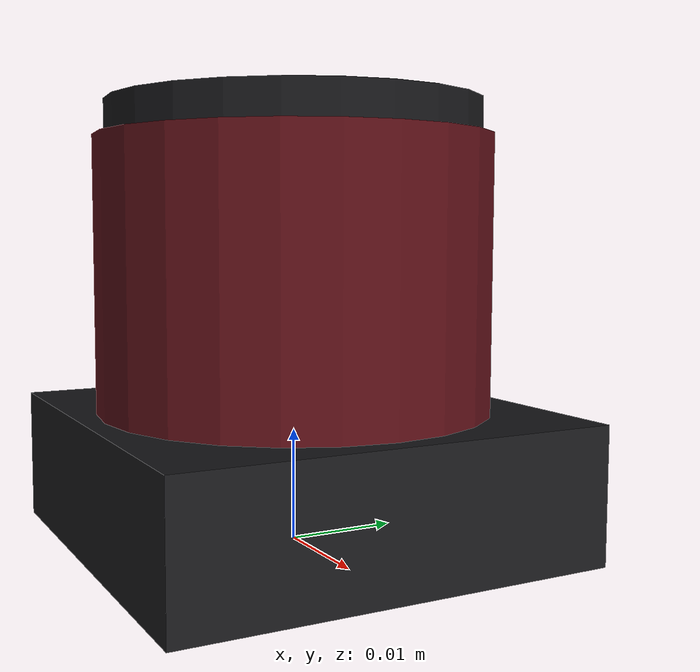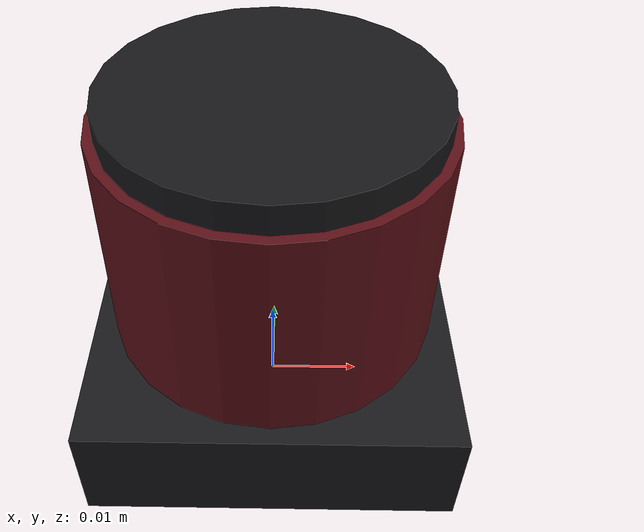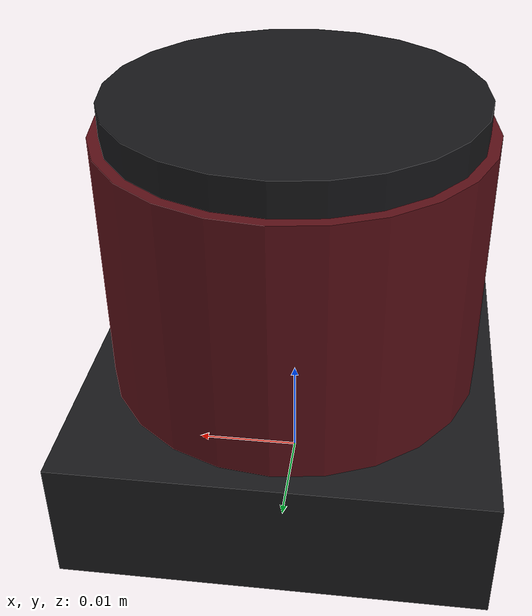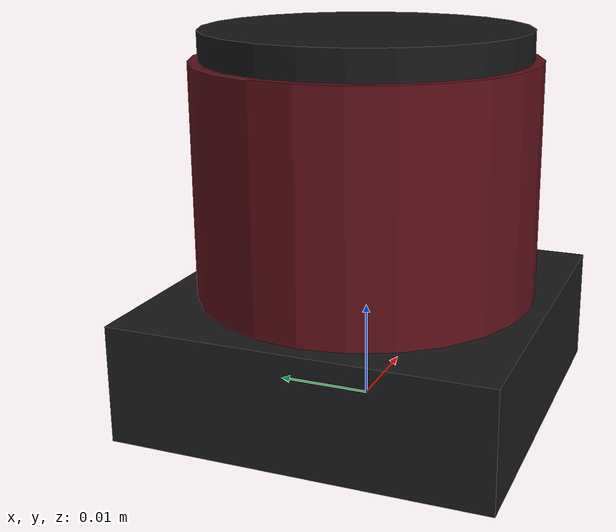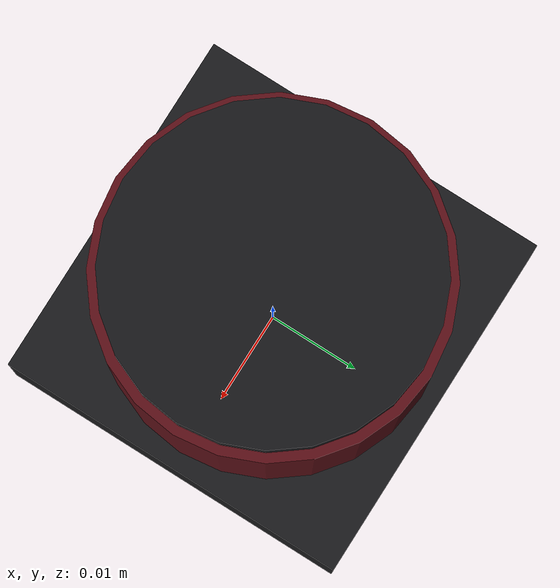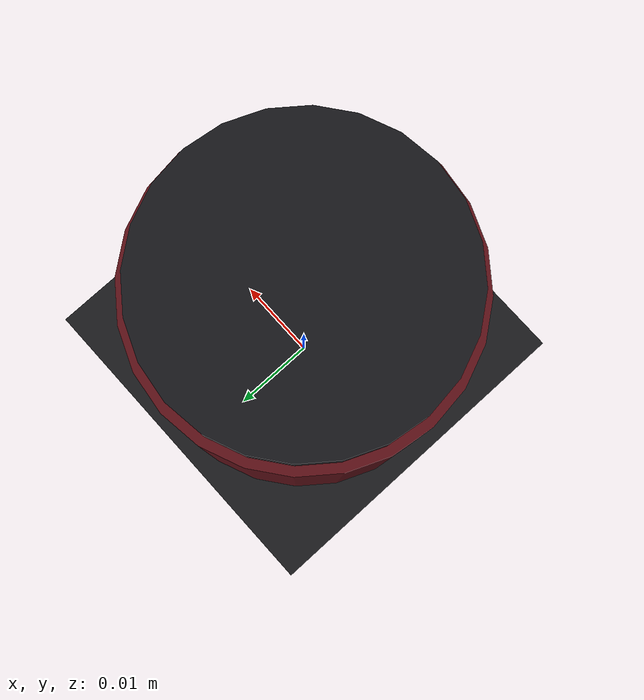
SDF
<?xml version="1.0" encoding="UTF-8"?>
<sdf version="1.9">
  <model name="ldrobot_d500">
    <link name="link">
      <inertial>
        <pose>0 0 0.018 0 0 0</pose>
        <mass>0.049</mass>
        <inertia>
          <ixx>1.05e-05</ixx><ixy>0</ixy><ixz>0</ixz>
          <iyy>1.05e-05</iyy><iyz>0</iyz><izz>1.30e-05</izz>
        </inertia>
      </inertial>

      <collision name="d500_collision">
        <pose>0 0 0.018 0 0 0</pose>
        <geometry><box><size>0.0385 0.0385 0.036</size></box></geometry>
      </collision>

      <!-- base fija: carcasa negra -->
      <visual name="d500_base">
        <pose>0 0 0.006 0 0 0</pose>
        <geometry><box><size>0.0385 0.0385 0.012</size></box></geometry>
        <material>
          <ambient>0.10 0.10 0.11 1</ambient>
          <diffuse>0.10 0.10 0.11 1</diffuse>
          <specular>0.10 0.10 0.10 1</specular>
        </material>
      </visual>
      <!-- tambor giratorio granate (el que se ve en la foto) -->
      <visual name="d500_drum">
        <pose>0 0 0.024 0 0 0</pose>
        <geometry><cylinder><radius>0.0175</radius><length>0.024</length></cylinder></geometry>
        <material>
          <ambient>0.28 0.05 0.07 1</ambient>
          <diffuse>0.36 0.06 0.09 1</diffuse>
          <specular>0.35 0.20 0.20 1</specular>
        </material>
      </visual>
      <visual name="d500_cap">
        <pose>0 0 0.0375 0 0 0</pose>
        <geometry><cylinder><radius>0.0165</radius><length>0.003</length></cylinder></geometry>
        <material>
          <ambient>0.09 0.09 0.10 1</ambient>
          <diffuse>0.09 0.09 0.10 1</diffuse>
        </material>
      </visual>

      <sensor name="lidar_2d_v2" type="gpu_lidar">
        <gz_frame_id>link</gz_frame_id>
        <pose>0 0 0.024 0 0 0</pose>
        <always_on>1</always_on>
        <update_rate>10</update_rate>
        <visualize>false</visualize>
        <ray>
          <scan>
            <horizontal>
              <samples>450</samples>
              <resolution>1</resolution>
              <min_angle>-3.141593</min_angle>
              <max_angle>3.141593</max_angle>
            </horizontal>
            <vertical>
              <samples>1</samples>
              <resolution>1</resolution>
              <min_angle>0</min_angle>
              <max_angle>0</max_angle>
            </vertical>
          </scan>
          <range>
            <min>0.03</min>
            <max>12.0</max>
            <resolution>0.01</resolution>
          </range>
          <noise>
            <type>gaussian</type>
            <mean>0.0</mean>
            <stddev>0.012</stddev>
          </noise>
        </ray>
      </sensor>
    </link>
  </model>
</sdf>
